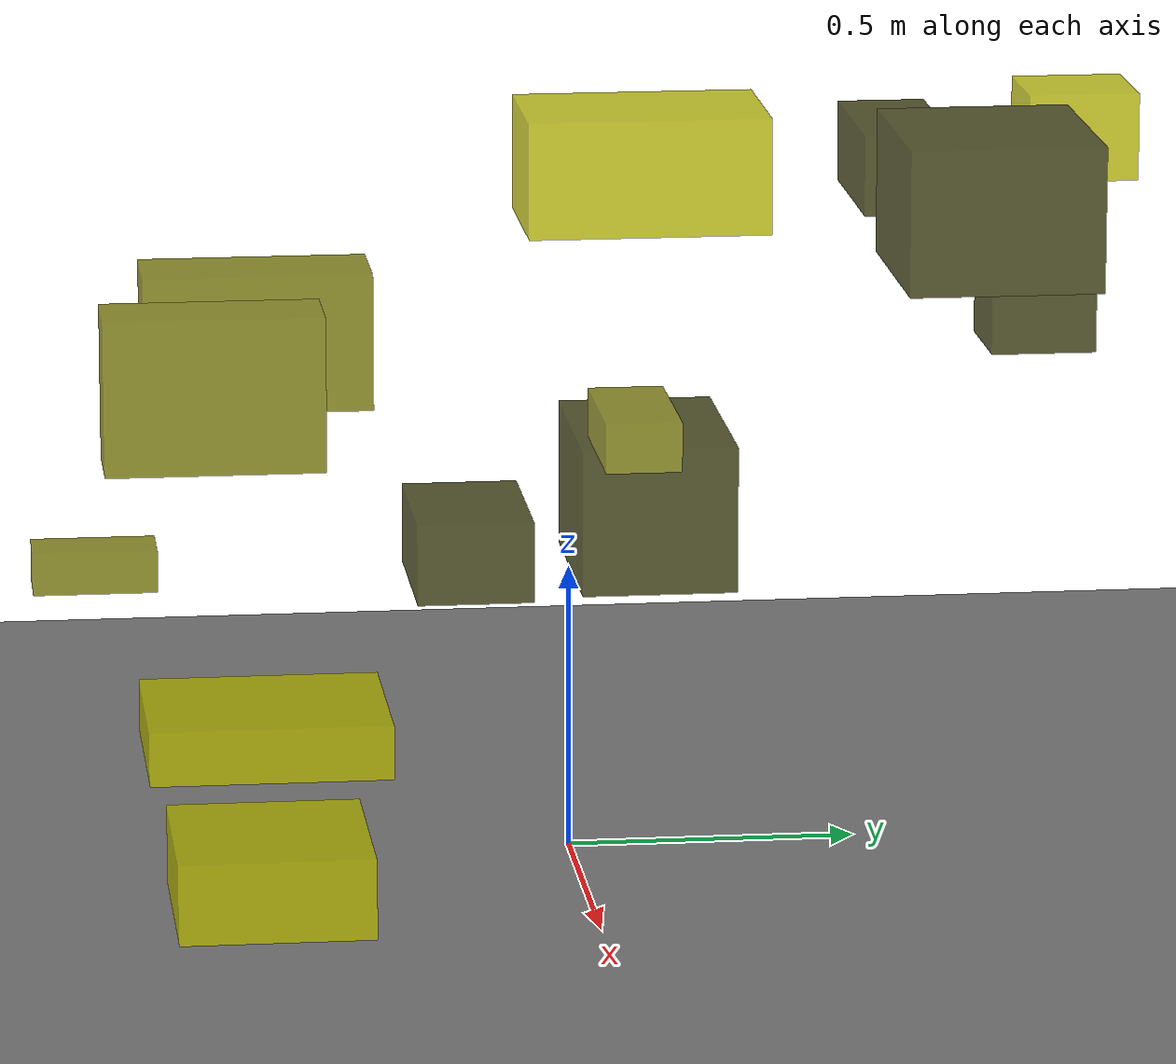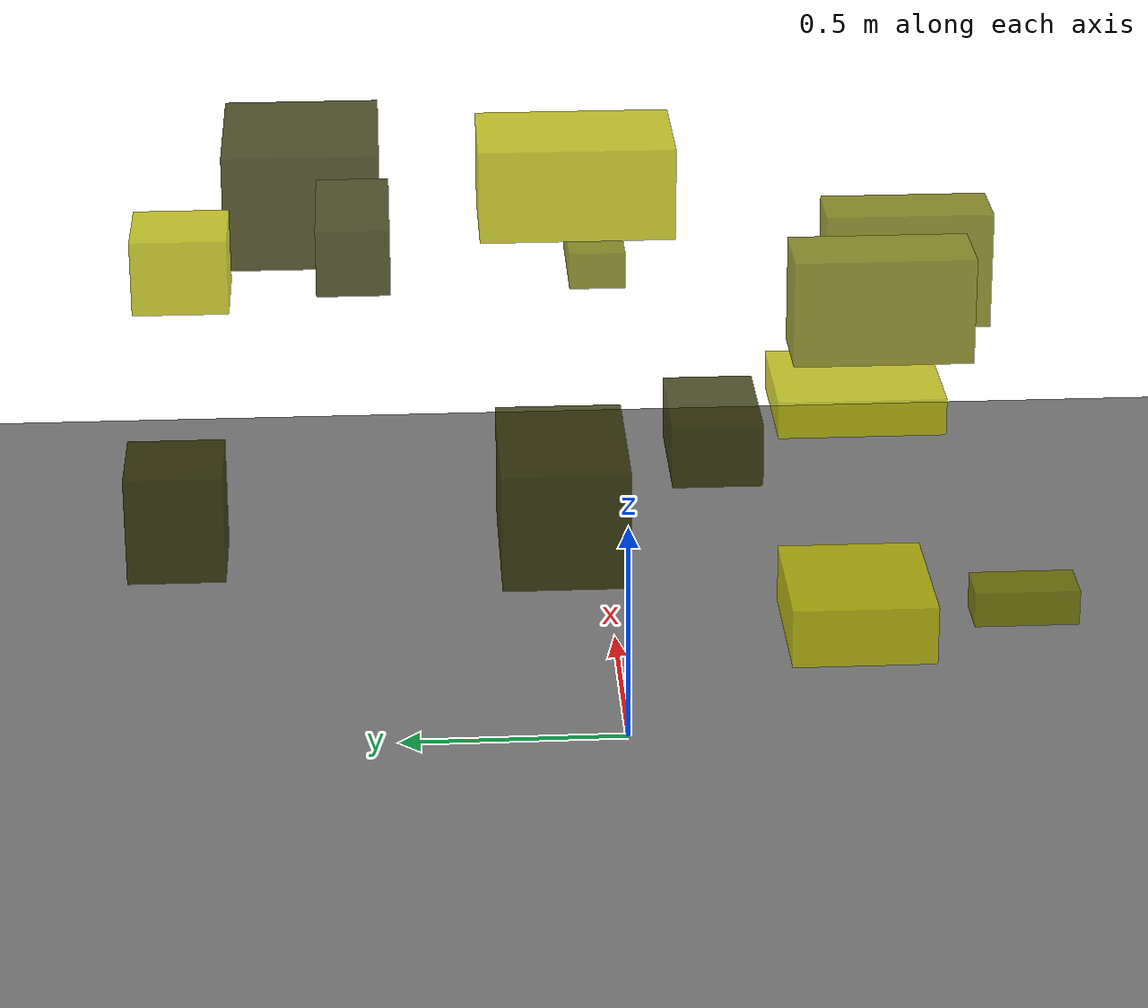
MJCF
<?xml version="1.0"?>
<mujoco model="obstacle_scene">
  <compiler angle="radian" coordinate="local"/>
  <option timestep="0.001" gravity="0 0 -9.81"/>

  <asset>
    <material name="obstacle_mat" rgba="0.8 0.8 0.0 0.8"/>
    <material name="ground_mat" rgba="0.5 0.5 0.5 1"/>
  </asset>

  <worldbody>
    <!-- Ground plane -->
    <geom name="ground" type="plane" size="3 3 0.1" material="ground_mat"/>

    <!-- Obstacles -->
    <body name="obstacle_0" pos="0.251901 -0.199224 0.613492">
      <geom name="obs_0" type="box" size="0.147249 0.097750 0.068906" rgba="0.2 0.2 0.0 0.8"/>
    </body>
    <body name="obstacle_1" pos="0.639910 0.037828 0.896172">
      <geom name="obs_1" type="box" size="0.130166 0.061858 0.041057" rgba="0.5 0.5 0.0 0.8"/>
    </body>
    <body name="obstacle_2" pos="0.824394 -0.582144 0.461577">
      <geom name="obs_2" type="box" size="0.161684 0.194487 0.044301" rgba="0.8 0.8 0.0 0.8"/>
    </body>
    <body name="obstacle_3" pos="-0.067106 0.144807 0.606462">
      <geom name="obs_3" type="box" size="0.191631 0.133879 0.127849" rgba="0.2 0.2 0.0 0.8"/>
    </body>
    <body name="obstacle_4" pos="-0.293581 -0.807009 0.449272">
      <geom name="obs_4" type="box" size="0.053051 0.108992 0.037823" rgba="0.5 0.5 0.0 0.8"/>
    </body>
    <body name="obstacle_5" pos="-0.224159 0.915917 1.208752">
      <geom name="obs_5" type="box" size="0.094204 0.096013 0.076446" rgba="0.8 0.8 0.0 0.8"/>
    </body>
    <body name="obstacle_6" pos="-0.628240 0.923397 0.842269">
      <geom name="obs_6" type="box" size="0.098267 0.095130 0.108355" rgba="0.2 0.2 0.0 0.8"/>
    </body>
    <body name="obstacle_7" pos="0.137415 -0.546476 0.956081">
      <geom name="obs_7" type="box" size="0.082774 0.192695 0.116987" rgba="0.5 0.5 0.0 0.8"/>
    </body>
    <body name="obstacle_8" pos="0.431907 -0.549977 0.100293">
      <geom name="obs_8" type="box" size="0.178731 0.164212 0.069089" rgba="0.8 0.8 0.0 0.8"/>
    </body>
    <body name="obstacle_9" pos="0.288013 0.679269 1.190444">
      <geom name="obs_9" type="box" size="0.188094 0.163407 0.123500" rgba="0.2 0.2 0.0 0.8"/>
    </body>
    <body name="obstacle_10" pos="0.428977 -0.637062 0.933751">
      <geom name="obs_10" type="box" size="0.072654 0.182216 0.130516" rgba="0.5 0.5 0.0 0.8"/>
    </body>
    <body name="obstacle_11" pos="0.165958 0.105205 1.240383">
      <geom name="obs_11" type="box" size="0.134088 0.204004 0.098350" rgba="0.8 0.8 0.0 0.8"/>
    </body>
    <body name="obstacle_12" pos="-0.061568 0.571777 1.196773">
      <geom name="obs_12" type="box" size="0.159543 0.074908 0.069515" rgba="0.2 0.2 0.0 0.8"/>
    </body>
  </worldbody>
</mujoco>
